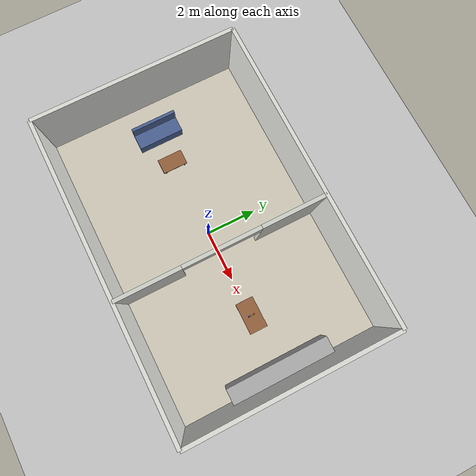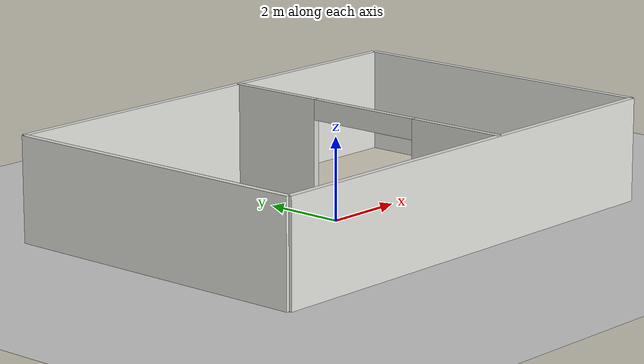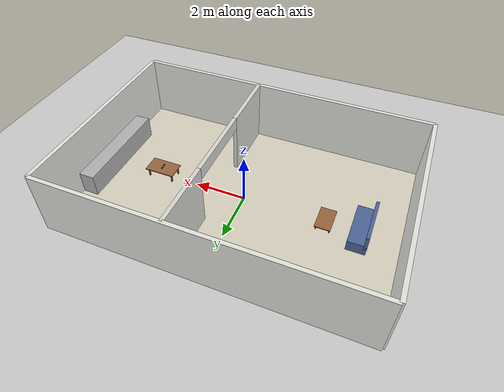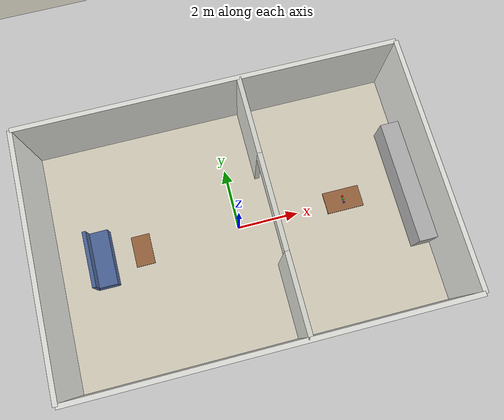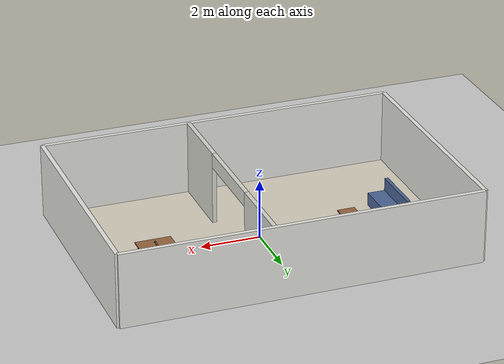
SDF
<?xml version="1.0" ?>
<sdf version="1.6">
  <world name="home_world">

    <!-- Physics -->
    <physics type="ode">
      <max_step_size>0.001</max_step_size>
      <real_time_factor>1</real_time_factor>
      <real_time_update_rate>1000</real_time_update_rate>
    </physics>

    <!-- Lighting -->
    <include>
      <uri>model://sun</uri>
    </include>

    <include>
      <uri>model://ground_plane</uri>
    </include>

    <!--              HOUSE STRUCTURE                  -->

    <!-- Floor -->
    <model name="floor">
      <static>true</static>
      <link name="link">
        <collision name="collision">
          <geometry>
            <box><size>12 8 0.02</size></box>
          </geometry>
        </collision>
        <visual name="visual">
          <geometry>
            <box><size>12 8 0.02</size></box>
          </geometry>
          <material>
            <ambient>0.85 0.82 0.75 1</ambient>
            <diffuse>0.85 0.82 0.75 1</diffuse>
          </material>
        </visual>
      </link>
      <pose>0 0 0 0 0 0</pose>
    </model>

    <!--           OUTER WALLS                        -->

    <!-- North Wall -->
    <model name="wall_north">
      <static>true</static>
      <link name="link">
        <collision name="collision">
          <geometry><box><size>12 0.15 2.5</size></box></geometry>
        </collision>
        <visual name="visual">
          <geometry><box><size>12 0.15 2.5</size></box></geometry>
          <material>
            <ambient>0.9 0.9 0.88 1</ambient>
            <diffuse>0.9 0.9 0.88 1</diffuse>
          </material>
        </visual>
      </link>
      <pose>0 4 1.25 0 0 0</pose>
    </model>

    <!-- South Wall -->
    <model name="wall_south">
      <static>true</static>
      <link name="link">
        <collision name="collision">
          <geometry><box><size>12 0.15 2.5</size></box></geometry>
        </collision>
        <visual name="visual">
          <geometry><box><size>12 0.15 2.5</size></box></geometry>
          <material>
            <ambient>0.9 0.9 0.88 1</ambient>
            <diffuse>0.9 0.9 0.88 1</diffuse>
          </material>
        </visual>
      </link>
      <pose>0 -4 1.25 0 0 0</pose>
    </model>

    <!-- East Wall -->
    <model name="wall_east">
      <static>true</static>
      <link name="link">
        <collision name="collision">
          <geometry><box><size>0.15 8 2.5</size></box></geometry>
        </collision>
        <visual name="visual">
          <geometry><box><size>0.15 8 2.5</size></box></geometry>
          <material>
            <ambient>0.9 0.9 0.88 1</ambient>
            <diffuse>0.9 0.9 0.88 1</diffuse>
          </material>
        </visual>
      </link>
      <pose>6 0 1.25 0 0 0</pose>
    </model>

    <!-- West Wall -->
    <model name="wall_west">
      <static>true</static>
      <link name="link">
        <collision name="collision">
          <geometry><box><size>0.15 8 2.5</size></box></geometry>
        </collision>
        <visual name="visual">
          <geometry><box><size>0.15 8 2.5</size></box></geometry>
          <material>
            <ambient>0.9 0.9 0.88 1</ambient>
            <diffuse>0.9 0.9 0.88 1</diffuse>
          </material>
        </visual>
      </link>
      <pose>-6 0 1.25 0 0 0</pose>
    </model>

    <!--    DIVIDER WALL (Kitchen | Living Room)      -->
    <!--    With doorway opening in the middle         -->

    <!-- Divider Wall - Left Section -->
    <model name="divider_left">
      <static>true</static>
      <link name="link">
        <collision name="collision">
          <geometry><box><size>0.15 2.5 2.5</size></box></geometry>
        </collision>
        <visual name="visual">
          <geometry><box><size>0.15 2.5 2.5</size></box></geometry>
          <material>
            <ambient>0.85 0.85 0.82 1</ambient>
            <diffuse>0.85 0.85 0.82 1</diffuse>
          </material>
        </visual>
      </link>
      <pose>1 -2.75 1.25 0 0 0</pose>
    </model>

    <!-- Divider Wall - Right Section -->
    <model name="divider_right">
      <static>true</static>
      <link name="link">
        <collision name="collision">
          <geometry><box><size>0.15 2.5 2.5</size></box></geometry>
        </collision>
        <visual name="visual">
          <geometry><box><size>0.15 2.5 2.5</size></box></geometry>
          <material>
            <ambient>0.85 0.85 0.82 1</ambient>
            <diffuse>0.85 0.85 0.82 1</diffuse>
          </material>
        </visual>
      </link>
      <pose>1 2.75 1.25 0 0 0</pose>
    </model>

    <!-- Divider Wall - Top (above doorway) -->
    <model name="divider_top">
      <static>true</static>
      <link name="link">
        <collision name="collision">
          <geometry><box><size>0.15 3 0.5</size></box></geometry>
        </collision>
        <visual name="visual">
          <geometry><box><size>0.15 3 0.5</size></box></geometry>
          <material>
            <ambient>0.85 0.85 0.82 1</ambient>
            <diffuse>0.85 0.85 0.82 1</diffuse>
          </material>
        </visual>
      </link>
      <pose>1 0 2.25 0 0 0</pose>
    </model>

    <!--              KITCHEN AREA (Right side x>1)   -->

    <!-- Kitchen Table -->
    <model name="kitchen_table">
      <static>true</static>
      <link name="link">
        <!-- Table top -->
        <collision name="top_collision">
          <pose>0 0 0.375 0 0 0</pose>
          <geometry><box><size>1.2 0.7 0.04</size></box></geometry>
        </collision>
        <visual name="top_visual">
          <pose>0 0 0.375 0 0 0</pose>
          <geometry><box><size>1.2 0.7 0.04</size></box></geometry>
          <material>
            <ambient>0.55 0.35 0.2 1</ambient>
            <diffuse>0.6 0.4 0.25 1</diffuse>
          </material>
        </visual>
        <!-- Leg 1 -->
        <collision name="leg1_collision">
          <pose>0.5 0.25 0.175 0 0 0</pose>
          <geometry><box><size>0.05 0.05 0.35</size></box></geometry>
        </collision>
        <visual name="leg1_visual">
          <pose>0.5 0.25 0.175 0 0 0</pose>
          <geometry><box><size>0.05 0.05 0.35</size></box></geometry>
          <material>
            <ambient>0.45 0.3 0.15 1</ambient>
            <diffuse>0.5 0.35 0.2 1</diffuse>
          </material>
        </visual>
        <!-- Leg 2 -->
        <collision name="leg2_collision">
          <pose>-0.5 0.25 0.175 0 0 0</pose>
          <geometry><box><size>0.05 0.05 0.35</size></box></geometry>
        </collision>
        <visual name="leg2_visual">
          <pose>-0.5 0.25 0.175 0 0 0</pose>
          <geometry><box><size>0.05 0.05 0.35</size></box></geometry>
          <material>
            <ambient>0.45 0.3 0.15 1</ambient>
            <diffuse>0.5 0.35 0.2 1</diffuse>
          </material>
        </visual>
        <!-- Leg 3 -->
        <collision name="leg3_collision">
          <pose>0.5 -0.25 0.175 0 0 0</pose>
          <geometry><box><size>0.05 0.05 0.35</size></box></geometry>
        </collision>
        <visual name="leg3_visual">
          <pose>0.5 -0.25 0.175 0 0 0</pose>
          <geometry><box><size>0.05 0.05 0.35</size></box></geometry>
          <material>
            <ambient>0.45 0.3 0.15 1</ambient>
            <diffuse>0.5 0.35 0.2 1</diffuse>
          </material>
        </visual>
        <!-- Leg 4 -->
        <collision name="leg4_collision">
          <pose>-0.5 -0.25 0.175 0 0 0</pose>
          <geometry><box><size>0.05 0.05 0.35</size></box></geometry>
        </collision>
        <visual name="leg4_visual">
          <pose>-0.5 -0.25 0.175 0 0 0</pose>
          <geometry><box><size>0.05 0.05 0.35</size></box></geometry>
          <material>
            <ambient>0.45 0.3 0.15 1</ambient>
            <diffuse>0.5 0.35 0.2 1</diffuse>
          </material>
        </visual>
      </link>
      <pose>3.5 0 0.01 0 0 0</pose>
    </model>

    <!-- Kitchen Counter (along east wall) -->
    <model name="kitchen_counter">
      <static>true</static>
      <link name="link">
        <collision name="collision">
          <geometry><box><size>0.6 4 0.9</size></box></geometry>
        </collision>
        <visual name="visual">
          <geometry><box><size>0.6 4 0.9</size></box></geometry>
          <material>
            <ambient>0.6 0.6 0.6 1</ambient>
            <diffuse>0.7 0.7 0.7 1</diffuse>
          </material>
        </visual>
      </link>
      <pose>5.6 0 0.45 0 0 0</pose>
    </model>

    <!-- Food Object (Red Cube on table) -->
    <model name="red_cube">
      <link name="link">
        <inertial>
          <mass>0.01</mass>
          <inertia>
            <ixx>0.00000667</ixx>
            <iyy>0.00000667</iyy>
            <izz>0.00000667</izz>
            <ixy>0</ixy>
            <ixz>0</ixz>
            <iyz>0</iyz>
          </inertia>
        </inertial>
        <collision name="collision">
          <geometry><box><size>0.05 0.05 0.05</size></box></geometry>
          <surface>
            <friction>
              <ode>
                <mu>1000.0</mu>
                <mu2>1000.0</mu2>
              </ode>
            </friction>
            <contact>
              <ode>
                <kp>100000</kp>
                <kd>100</kd>
                <max_vel>0.1</max_vel>
                <min_depth>0.003</min_depth>
                <soft_cfm>0.01</soft_cfm>
              </ode>
            </contact>
          </surface>
        </collision>
        <visual name="visual">
          <geometry><box><size>0.05 0.05 0.05</size></box></geometry>
          <material>
            <ambient>0.9 0.1 0.1 1</ambient>
            <diffuse>1.0 0.2 0.2 1</diffuse>
          </material>
        </visual>
      </link>
      <pose>3.5 0.1 0.43 0 0 0</pose>
    </model>

    <!-- Food Object (Green Cube on table) -->
    <model name="green_cube">
      <link name="link">
        <inertial>
          <mass>0.01</mass>
          <inertia>
            <ixx>0.00000667</ixx>
            <iyy>0.00000667</iyy>
            <izz>0.00000667</izz>
            <ixy>0</ixy>
            <ixz>0</ixz>
            <iyz>0</iyz>
          </inertia>
        </inertial>
        <collision name="collision">
          <geometry><box><size>0.05 0.05 0.05</size></box></geometry>
          <surface>
            <friction>
              <ode>
                <mu>1000.0</mu>
                <mu2>1000.0</mu2>
              </ode>
            </friction>
            <contact>
              <ode>
                <kp>100000</kp>
                <kd>100</kd>
                <max_vel>0.1</max_vel>
                <min_depth>0.003</min_depth>
                <soft_cfm>0.01</soft_cfm>
              </ode>
            </contact>
          </surface>
        </collision>
        <visual name="visual">
          <geometry><box><size>0.05 0.05 0.05</size></box></geometry>
          <material>
            <ambient>0.1 0.9 0.1 1</ambient>
            <diffuse>0.2 1.0 0.2 1</diffuse>
          </material>
        </visual>
      </link>
      <pose>3.5 0 0.43 0 0 0</pose>
    </model>

    <!-- Food Object (Blue Cube on table) -->
    <model name="blue_cube">
      <link name="link">
        <inertial>
          <mass>0.01</mass>
          <inertia>
            <ixx>0.00000667</ixx>
            <iyy>0.00000667</iyy>
            <izz>0.00000667</izz>
            <ixy>0</ixy>
            <ixz>0</ixz>
            <iyz>0</iyz>
          </inertia>
        </inertial>
        <collision name="collision">
          <geometry><box><size>0.05 0.05 0.05</size></box></geometry>
          <surface>
            <friction>
              <ode>
                <mu>1000.0</mu>
                <mu2>1000.0</mu2>
              </ode>
            </friction>
            <contact>
              <ode>
                <kp>100000</kp>
                <kd>100</kd>
                <max_vel>0.1</max_vel>
                <min_depth>0.003</min_depth>
                <soft_cfm>0.01</soft_cfm>
              </ode>
            </contact>
          </surface>
        </collision>
        <visual name="visual">
          <geometry><box><size>0.05 0.05 0.05</size></box></geometry>
          <material>
            <ambient>0.1 0.1 0.9 1</ambient>
            <diffuse>0.2 0.2 1.0 1</diffuse>
          </material>
        </visual>
      </link>
      <pose>3.5 -0.1 0.43 0 0 0</pose>
    </model>

    <!--          LIVING ROOM AREA (Left side x<1)    -->

    <!-- Sofa -->
    <model name="sofa">
      <static>true</static>
      <link name="link">
        <!-- Seat -->
        <collision name="seat_collision">
          <pose>0 0 0.22 0 0 0</pose>
          <geometry><box><size>0.7 1.8 0.44</size></box></geometry>
        </collision>
        <visual name="seat_visual">
          <pose>0 0 0.22 0 0 0</pose>
          <geometry><box><size>0.7 1.8 0.44</size></box></geometry>
          <material>
            <ambient>0.2 0.3 0.5 1</ambient>
            <diffuse>0.3 0.4 0.6 1</diffuse>
          </material>
        </visual>
        <!-- Backrest -->
        <collision name="back_collision">
          <pose>-0.3 0 0.55 0 0 0</pose>
          <geometry><box><size>0.12 1.8 0.65</size></box></geometry>
        </collision>
        <visual name="back_visual">
          <pose>-0.3 0 0.55 0 0 0</pose>
          <geometry><box><size>0.12 1.8 0.65</size></box></geometry>
          <material>
            <ambient>0.2 0.3 0.5 1</ambient>
            <diffuse>0.3 0.4 0.6 1</diffuse>
          </material>
        </visual>
      </link>
      <pose>-4.5 0 0.01 0 0 0</pose>
    </model>

    <!-- Coffee Table -->
    <model name="coffee_table">
      <static>true</static>
      <link name="link">
        <collision name="collision">
          <pose>0 0 0.2 0 0 0</pose>
          <geometry><box><size>0.6 1.0 0.04</size></box></geometry>
        </collision>
        <visual name="visual">
          <pose>0 0 0.2 0 0 0</pose>
          <geometry><box><size>0.6 1.0 0.04</size></box></geometry>
          <material>
            <ambient>0.55 0.35 0.2 1</ambient>
            <diffuse>0.6 0.4 0.25 1</diffuse>
          </material>
        </visual>
        <!-- Legs -->
        <collision name="leg1"><pose>0.25 0.4 0.09 0 0 0</pose><geometry><box><size>0.04 0.04 0.18</size></box></geometry></collision>
        <visual name="leg1_v"><pose>0.25 0.4 0.09 0 0 0</pose><geometry><box><size>0.04 0.04 0.18</size></box></geometry><material><ambient>0.45 0.3 0.15 1</ambient></material></visual>
        <collision name="leg2"><pose>-0.25 0.4 0.09 0 0 0</pose><geometry><box><size>0.04 0.04 0.18</size></box></geometry></collision>
        <visual name="leg2_v"><pose>-0.25 0.4 0.09 0 0 0</pose><geometry><box><size>0.04 0.04 0.18</size></box></geometry><material><ambient>0.45 0.3 0.15 1</ambient></material></visual>
        <collision name="leg3"><pose>0.25 -0.4 0.09 0 0 0</pose><geometry><box><size>0.04 0.04 0.18</size></box></geometry></collision>
        <visual name="leg3_v"><pose>0.25 -0.4 0.09 0 0 0</pose><geometry><box><size>0.04 0.04 0.18</size></box></geometry><material><ambient>0.45 0.3 0.15 1</ambient></material></visual>
        <collision name="leg4"><pose>-0.25 -0.4 0.09 0 0 0</pose><geometry><box><size>0.04 0.04 0.18</size></box></geometry></collision>
        <visual name="leg4_v"><pose>-0.25 -0.4 0.09 0 0 0</pose><geometry><box><size>0.04 0.04 0.18</size></box></geometry><material><ambient>0.45 0.3 0.15 1</ambient></material></visual>
      </link>
      <pose>-3.2 0 0.01 0 0 0</pose>
    </model>

    <!-- User delivery location marker (invisible, just for reference) -->
    <!-- User location: x=-2.5 y=0 (in front of sofa, near coffee table) -->

  </world>
</sdf>
